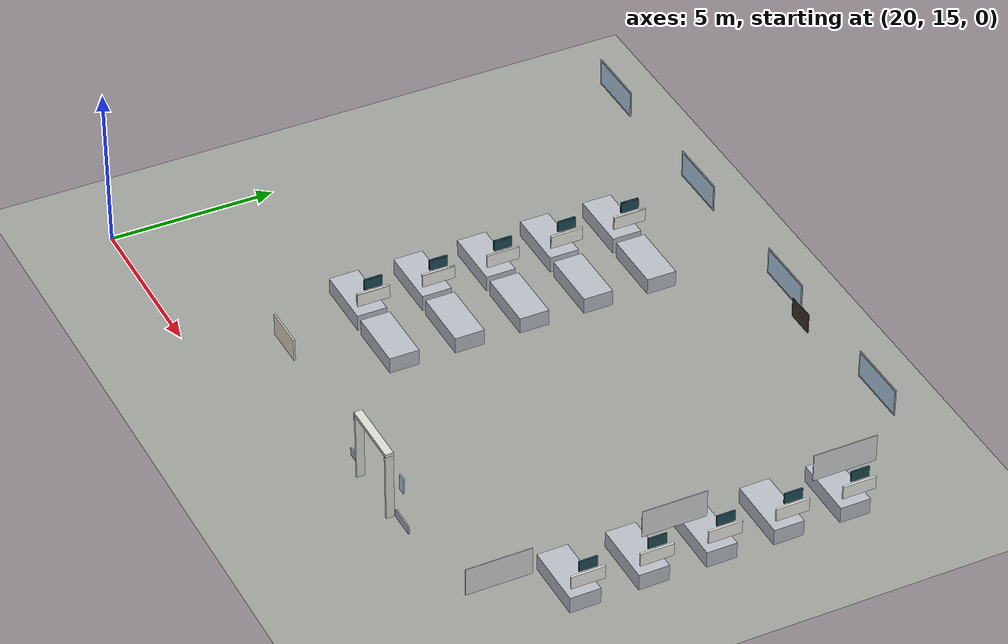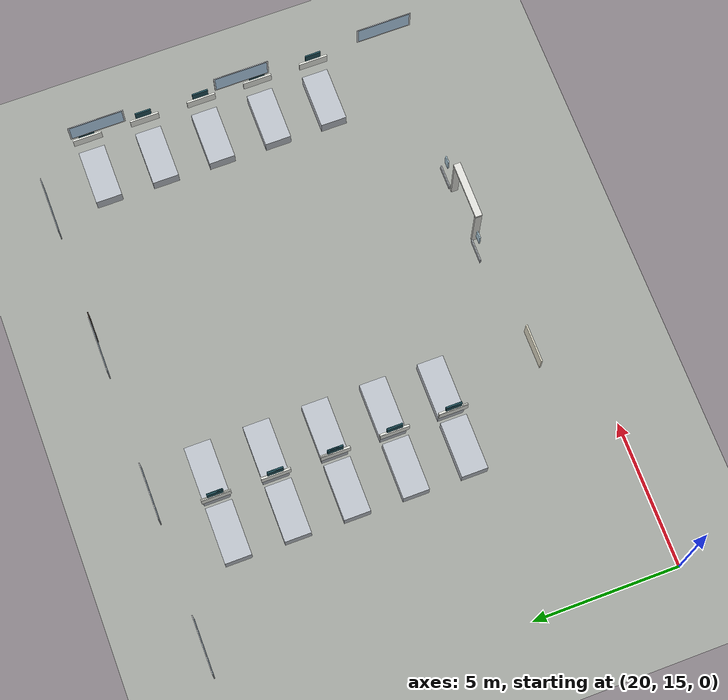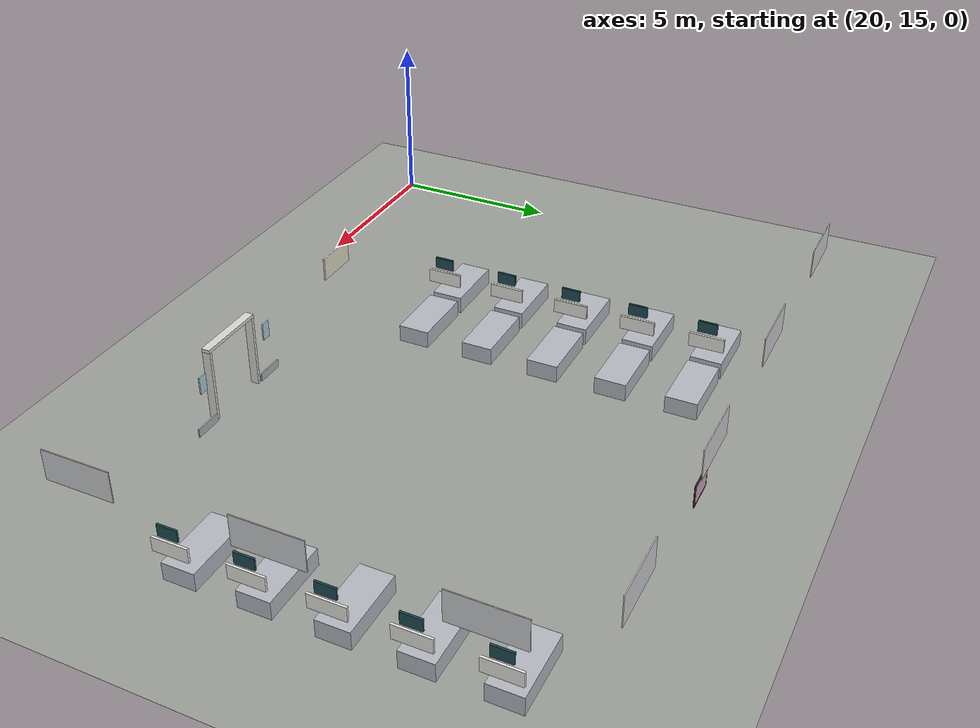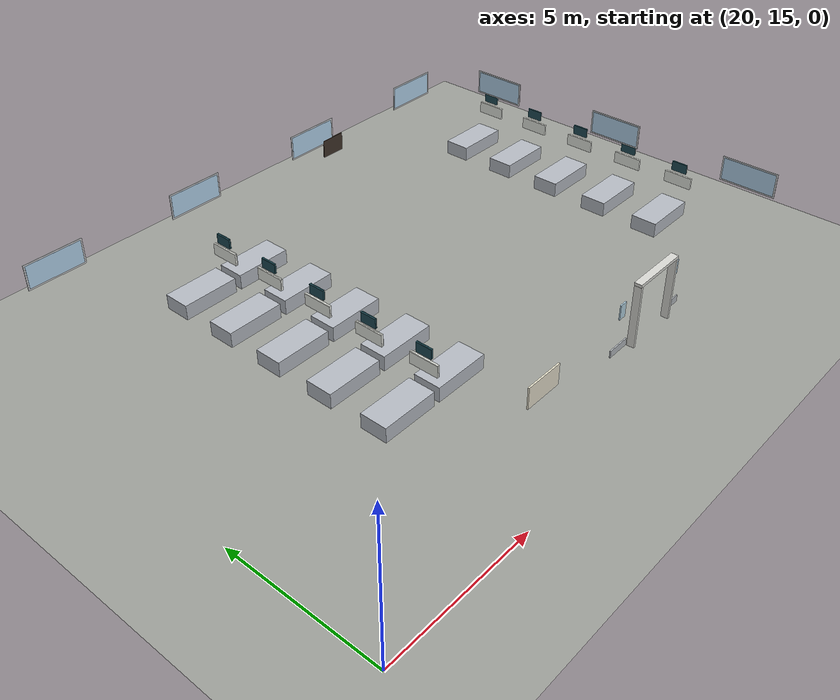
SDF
<sdf version="1.9">
 <world name="hospital">
  <model name="ground_plane">
   <static>true</static>
   <link name="link">
    <collision name="collision">
     <geometry><plane><normal>0 0 1</normal><size>200 200</size></plane></geometry>
    </collision>
    <visual name="visual">
     <pose>0 0 -0.03 0 0 0</pose>
     <cast_shadows>false</cast_shadows>
     <geometry><plane><normal>0 0 1</normal><size>200 200</size></plane></geometry>
     <material>
      <ambient>0.310 0.315 0.305 1.0</ambient>
      <diffuse>0.620 0.630 0.610 1.0</diffuse>
      <specular>0.14 0.14 0.14 1</specular>
      <emissive>0.000 0.000 0.000 1</emissive>
     </material>
    </visual>
   </link>
  </model>
  <model name="bed_7">
   <static>true</static>
   <pose>25.95 20.0 0.25 0 0 0</pose>
   <link name="link">
    <collision name="c">
     <geometry><box><size>1.8999999999999986 0.8999999999999986 0.5</size></box></geometry>
    </collision>
    <visual name="v">
     <visibility_flags>2</visibility_flags>
     <geometry><box><size>1.8999999999999986 0.8999999999999986 0.5</size></box></geometry>
     <material>
      <ambient>0.360 0.370 0.385 1.0</ambient>
      <diffuse>0.720 0.740 0.770 1.0</diffuse>
      <specular>0.14 0.14 0.14 1</specular>
      <emissive>0.000 0.000 0.000 1</emissive>
     </material>
    </visual>
   </link>
  </model>
  <model name="bed_9">
   <static>true</static>
   <pose>25.95 24.0 0.25 0 0 0</pose>
   <link name="link">
    <collision name="c">
     <geometry><box><size>1.8999999999999986 0.8999999999999986 0.5</size></box></geometry>
    </collision>
    <visual name="v">
     <visibility_flags>2</visibility_flags>
     <geometry><box><size>1.8999999999999986 0.8999999999999986 0.5</size></box></geometry>
     <material>
      <ambient>0.360 0.370 0.385 1.0</ambient>
      <diffuse>0.720 0.740 0.770 1.0</diffuse>
      <specular>0.14 0.14 0.14 1</specular>
      <emissive>0.000 0.000 0.000 1</emissive>
     </material>
    </visual>
   </link>
  </model>
  <model name="bed_11">
   <static>true</static>
   <pose>25.95 28.0 0.25 0 0 0</pose>
   <link name="link">
    <collision name="c">
     <geometry><box><size>1.8999999999999986 0.8999999999999986 0.5</size></box></geometry>
    </collision>
    <visual name="v">
     <visibility_flags>2</visibility_flags>
     <geometry><box><size>1.8999999999999986 0.8999999999999986 0.5</size></box></geometry>
     <material>
      <ambient>0.360 0.370 0.385 1.0</ambient>
      <diffuse>0.720 0.740 0.770 1.0</diffuse>
      <specular>0.14 0.14 0.14 1</specular>
      <emissive>0.000 0.000 0.000 1</emissive>
     </material>
    </visual>
   </link>
  </model>
  <model name="bed_12">
   <static>true</static>
   <pose>28.05 20.0 0.25 0 0 0</pose>
   <link name="link">
    <collision name="c">
     <geometry><box><size>1.8999999999999986 0.8999999999999986 0.5</size></box></geometry>
    </collision>
    <visual name="v">
     <visibility_flags>2</visibility_flags>
     <geometry><box><size>1.8999999999999986 0.8999999999999986 0.5</size></box></geometry>
     <material>
      <ambient>0.360 0.370 0.385 1.0</ambient>
      <diffuse>0.720 0.740 0.770 1.0</diffuse>
      <specular>0.14 0.14 0.14 1</specular>
      <emissive>0.000 0.000 0.000 1</emissive>
     </material>
    </visual>
   </link>
  </model>
  <model name="bed_13">
   <static>true</static>
   <pose>38.95 20.0 0.25 0 0 0</pose>
   <link name="link">
    <collision name="c">
     <geometry><box><size>1.8999999999999986 0.8999999999999986 0.5</size></box></geometry>
    </collision>
    <visual name="v">
     <visibility_flags>2</visibility_flags>
     <geometry><box><size>1.8999999999999986 0.8999999999999986 0.5</size></box></geometry>
     <material>
      <ambient>0.360 0.370 0.385 1.0</ambient>
      <diffuse>0.720 0.740 0.770 1.0</diffuse>
      <specular>0.14 0.14 0.14 1</specular>
      <emissive>0.000 0.000 0.000 1</emissive>
     </material>
    </visual>
   </link>
  </model>
  <model name="bed_14">
   <static>true</static>
   <pose>28.05 24.0 0.25 0 0 0</pose>
   <link name="link">
    <collision name="c">
     <geometry><box><size>1.8999999999999986 0.8999999999999986 0.5</size></box></geometry>
    </collision>
    <visual name="v">
     <visibility_flags>2</visibility_flags>
     <geometry><box><size>1.8999999999999986 0.8999999999999986 0.5</size></box></geometry>
     <material>
      <ambient>0.360 0.370 0.385 1.0</ambient>
      <diffuse>0.720 0.740 0.770 1.0</diffuse>
      <specular>0.14 0.14 0.14 1</specular>
      <emissive>0.000 0.000 0.000 1</emissive>
     </material>
    </visual>
   </link>
  </model>
  <model name="bed_15">
   <static>true</static>
   <pose>38.95 24.0 0.25 0 0 0</pose>
   <link name="link">
    <collision name="c">
     <geometry><box><size>1.8999999999999986 0.8999999999999986 0.5</size></box></geometry>
    </collision>
    <visual name="v">
     <visibility_flags>2</visibility_flags>
     <geometry><box><size>1.8999999999999986 0.8999999999999986 0.5</size></box></geometry>
     <material>
      <ambient>0.360 0.370 0.385 1.0</ambient>
      <diffuse>0.720 0.740 0.770 1.0</diffuse>
      <specular>0.14 0.14 0.14 1</specular>
      <emissive>0.000 0.000 0.000 1</emissive>
     </material>
    </visual>
   </link>
  </model>
  <model name="bed_16">
   <static>true</static>
   <pose>28.05 28.0 0.25 0 0 0</pose>
   <link name="link">
    <collision name="c">
     <geometry><box><size>1.8999999999999986 0.8999999999999986 0.5</size></box></geometry>
    </collision>
    <visual name="v">
     <visibility_flags>2</visibility_flags>
     <geometry><box><size>1.8999999999999986 0.8999999999999986 0.5</size></box></geometry>
     <material>
      <ambient>0.360 0.370 0.385 1.0</ambient>
      <diffuse>0.720 0.740 0.770 1.0</diffuse>
      <specular>0.14 0.14 0.14 1</specular>
      <emissive>0.000 0.000 0.000 1</emissive>
     </material>
    </visual>
   </link>
  </model>
  <model name="bed_17">
   <static>true</static>
   <pose>38.95 28.0 0.25 0 0 0</pose>
   <link name="link">
    <collision name="c">
     <geometry><box><size>1.8999999999999986 0.8999999999999986 0.5</size></box></geometry>
    </collision>
    <visual name="v">
     <visibility_flags>2</visibility_flags>
     <geometry><box><size>1.8999999999999986 0.8999999999999986 0.5</size></box></geometry>
     <material>
      <ambient>0.360 0.370 0.385 1.0</ambient>
      <diffuse>0.720 0.740 0.770 1.0</diffuse>
      <specular>0.14 0.14 0.14 1</specular>
      <emissive>0.000 0.000 0.000 1</emissive>
     </material>
    </visual>
   </link>
  </model>
  <model name="bed_37">
   <static>true</static>
   <pose>25.95 22.0 0.25 0 0 0</pose>
   <link name="link">
    <collision name="c">
     <geometry><box><size>1.8999999999999986 0.8999999999999986 0.5</size></box></geometry>
    </collision>
    <visual name="v">
     <visibility_flags>2</visibility_flags>
     <geometry><box><size>1.8999999999999986 0.8999999999999986 0.5</size></box></geometry>
     <material>
      <ambient>0.360 0.370 0.385 1.0</ambient>
      <diffuse>0.720 0.740 0.770 1.0</diffuse>
      <specular>0.14 0.14 0.14 1</specular>
      <emissive>0.000 0.000 0.000 1</emissive>
     </material>
    </visual>
   </link>
  </model>
  <model name="bed_39">
   <static>true</static>
   <pose>25.95 26.0 0.25 0 0 0</pose>
   <link name="link">
    <collision name="c">
     <geometry><box><size>1.8999999999999986 0.8999999999999986 0.5</size></box></geometry>
    </collision>
    <visual name="v">
     <visibility_flags>2</visibility_flags>
     <geometry><box><size>1.8999999999999986 0.8999999999999986 0.5</size></box></geometry>
     <material>
      <ambient>0.360 0.370 0.385 1.0</ambient>
      <diffuse>0.720 0.740 0.770 1.0</diffuse>
      <specular>0.14 0.14 0.14 1</specular>
      <emissive>0.000 0.000 0.000 1</emissive>
     </material>
    </visual>
   </link>
  </model>
  <model name="bed_40">
   <static>true</static>
   <pose>28.05 22.0 0.25 0 0 0</pose>
   <link name="link">
    <collision name="c">
     <geometry><box><size>1.8999999999999986 0.8999999999999986 0.5</size></box></geometry>
    </collision>
    <visual name="v">
     <visibility_flags>2</visibility_flags>
     <geometry><box><size>1.8999999999999986 0.8999999999999986 0.5</size></box></geometry>
     <material>
      <ambient>0.360 0.370 0.385 1.0</ambient>
      <diffuse>0.720 0.740 0.770 1.0</diffuse>
      <specular>0.14 0.14 0.14 1</specular>
      <emissive>0.000 0.000 0.000 1</emissive>
     </material>
    </visual>
   </link>
  </model>
  <model name="bed_41">
   <static>true</static>
   <pose>38.95 22.0 0.25 0 0 0</pose>
   <link name="link">
    <collision name="c">
     <geometry><box><size>1.8999999999999986 0.8999999999999986 0.5</size></box></geometry>
    </collision>
    <visual name="v">
     <visibility_flags>2</visibility_flags>
     <geometry><box><size>1.8999999999999986 0.8999999999999986 0.5</size></box></geometry>
     <material>
      <ambient>0.360 0.370 0.385 1.0</ambient>
      <diffuse>0.720 0.740 0.770 1.0</diffuse>
      <specular>0.14 0.14 0.14 1</specular>
      <emissive>0.000 0.000 0.000 1</emissive>
     </material>
    </visual>
   </link>
  </model>
  <model name="bed_42">
   <static>true</static>
   <pose>28.05 26.0 0.25 0 0 0</pose>
   <link name="link">
    <collision name="c">
     <geometry><box><size>1.8999999999999986 0.8999999999999986 0.5</size></box></geometry>
    </collision>
    <visual name="v">
     <visibility_flags>2</visibility_flags>
     <geometry><box><size>1.8999999999999986 0.8999999999999986 0.5</size></box></geometry>
     <material>
      <ambient>0.360 0.370 0.385 1.0</ambient>
      <diffuse>0.720 0.740 0.770 1.0</diffuse>
      <specular>0.14 0.14 0.14 1</specular>
      <emissive>0.000 0.000 0.000 1</emissive>
     </material>
    </visual>
   </link>
  </model>
  <model name="bed_43">
   <static>true</static>
   <pose>38.95 26.0 0.25 0 0 0</pose>
   <link name="link">
    <collision name="c">
     <geometry><box><size>1.8999999999999986 0.8999999999999986 0.5</size></box></geometry>
    </collision>
    <visual name="v">
     <visibility_flags>2</visibility_flags>
     <geometry><box><size>1.8999999999999986 0.8999999999999986 0.5</size></box></geometry>
     <material>
      <ambient>0.360 0.370 0.385 1.0</ambient>
      <diffuse>0.720 0.740 0.770 1.0</diffuse>
      <specular>0.14 0.14 0.14 1</specular>
      <emissive>0.000 0.000 0.000 1</emissive>
     </material>
    </visual>
   </link>
  </model>
  <model name="bed_7_panel">
   <static>true</static>
   <pose>27.009999999999998 20.0 1.15 0 0 0</pose>
   <link name="link">
    <visual name="v">
     <cast_shadows>false</cast_shadows>
     <geometry><box><size>0.06 0.9899999999999985 0.4</size></box></geometry>
     <material>
      <ambient>0.460 0.465 0.450 1.0</ambient>
      <diffuse>0.920 0.930 0.900 1.0</diffuse>
      <specular>0.14 0.14 0.14 1</specular>
      <emissive>0.000 0.000 0.000 1</emissive>
     </material>
    </visual>
   </link>
  </model>
  <model name="bed_7_monitor">
   <static>true</static>
   <pose>27.009999999999998 20.0 1.615 0 0 0</pose>
   <link name="link">
    <visual name="v">
     <cast_shadows>false</cast_shadows>
     <geometry><box><size>0.05 0.5444999999999992 0.33</size></box></geometry>
     <material>
      <ambient>0.060 0.150 0.170 1.0</ambient>
      <diffuse>0.120 0.300 0.340 1.0</diffuse>
      <specular>0.14 0.14 0.14 1</specular>
      <emissive>0.042 0.105 0.119 1</emissive>
     </material>
    </visual>
   </link>
  </model>
  <model name="bed_9_panel">
   <static>true</static>
   <pose>27.009999999999998 24.0 1.15 0 0 0</pose>
   <link name="link">
    <visual name="v">
     <cast_shadows>false</cast_shadows>
     <geometry><box><size>0.06 0.9899999999999985 0.4</size></box></geometry>
     <material>
      <ambient>0.460 0.465 0.450 1.0</ambient>
      <diffuse>0.920 0.930 0.900 1.0</diffuse>
      <specular>0.14 0.14 0.14 1</specular>
      <emissive>0.000 0.000 0.000 1</emissive>
     </material>
    </visual>
   </link>
  </model>
  <model name="bed_9_monitor">
   <static>true</static>
   <pose>27.009999999999998 24.0 1.615 0 0 0</pose>
   <link name="link">
    <visual name="v">
     <cast_shadows>false</cast_shadows>
     <geometry><box><size>0.05 0.5444999999999992 0.33</size></box></geometry>
     <material>
      <ambient>0.060 0.150 0.170 1.0</ambient>
      <diffuse>0.120 0.300 0.340 1.0</diffuse>
      <specular>0.14 0.14 0.14 1</specular>
      <emissive>0.042 0.105 0.119 1</emissive>
     </material>
    </visual>
   </link>
  </model>
  <model name="bed_11_panel">
   <static>true</static>
   <pose>27.009999999999998 28.0 1.15 0 0 0</pose>
   <link name="link">
    <visual name="v">
     <cast_shadows>false</cast_shadows>
     <geometry><box><size>0.06 0.9899999999999985 0.4</size></box></geometry>
     <material>
      <ambient>0.460 0.465 0.450 1.0</ambient>
      <diffuse>0.920 0.930 0.900 1.0</diffuse>
      <specular>0.14 0.14 0.14 1</specular>
      <emissive>0.000 0.000 0.000 1</emissive>
     </material>
    </visual>
   </link>
  </model>
  <model name="bed_11_monitor">
   <static>true</static>
   <pose>27.009999999999998 28.0 1.615 0 0 0</pose>
   <link name="link">
    <visual name="v">
     <cast_shadows>false</cast_shadows>
     <geometry><box><size>0.05 0.5444999999999992 0.33</size></box></geometry>
     <material>
      <ambient>0.060 0.150 0.170 1.0</ambient>
      <diffuse>0.120 0.300 0.340 1.0</diffuse>
      <specular>0.14 0.14 0.14 1</specular>
      <emissive>0.042 0.105 0.119 1</emissive>
     </material>
    </visual>
   </link>
  </model>
  <model name="bed_12_panel">
   <static>true</static>
   <pose>26.990000000000002 20.0 1.15 0 0 0</pose>
   <link name="link">
    <visual name="v">
     <cast_shadows>false</cast_shadows>
     <geometry><box><size>0.06 0.9899999999999985 0.4</size></box></geometry>
     <material>
      <ambient>0.460 0.465 0.450 1.0</ambient>
      <diffuse>0.920 0.930 0.900 1.0</diffuse>
      <specular>0.14 0.14 0.14 1</specular>
      <emissive>0.000 0.000 0.000 1</emissive>
     </material>
    </visual>
   </link>
  </model>
  <model name="bed_12_monitor">
   <static>true</static>
   <pose>26.990000000000002 20.0 1.615 0 0 0</pose>
   <link name="link">
    <visual name="v">
     <cast_shadows>false</cast_shadows>
     <geometry><box><size>0.05 0.5444999999999992 0.33</size></box></geometry>
     <material>
      <ambient>0.060 0.150 0.170 1.0</ambient>
      <diffuse>0.120 0.300 0.340 1.0</diffuse>
      <specular>0.14 0.14 0.14 1</specular>
      <emissive>0.042 0.105 0.119 1</emissive>
     </material>
    </visual>
   </link>
  </model>
  <model name="bed_13_panel">
   <static>true</static>
   <pose>40.010000000000005 20.0 1.15 0 0 0</pose>
   <link name="link">
    <visual name="v">
     <cast_shadows>false</cast_shadows>
     <geometry><box><size>0.06 0.9899999999999985 0.4</size></box></geometry>
     <material>
      <ambient>0.460 0.465 0.450 1.0</ambient>
      <diffuse>0.920 0.930 0.900 1.0</diffuse>
      <specular>0.14 0.14 0.14 1</specular>
      <emissive>0.000 0.000 0.000 1</emissive>
     </material>
    </visual>
   </link>
  </model>
  <model name="bed_13_monitor">
   <static>true</static>
   <pose>40.010000000000005 20.0 1.615 0 0 0</pose>
   <link name="link">
    <visual name="v">
     <cast_shadows>false</cast_shadows>
     <geometry><box><size>0.05 0.5444999999999992 0.33</size></box></geometry>
     <material>
      <ambient>0.060 0.150 0.170 1.0</ambient>
      <diffuse>0.120 0.300 0.340 1.0</diffuse>
      <specular>0.14 0.14 0.14 1</specular>
      <emissive>0.042 0.105 0.119 1</emissive>
     </material>
    </visual>
   </link>
  </model>
  <model name="bed_14_panel">
   <static>true</static>
   <pose>26.990000000000002 24.0 1.15 0 0 0</pose>
   <link name="link">
    <visual name="v">
     <cast_shadows>false</cast_shadows>
     <geometry><box><size>0.06 0.9899999999999985 0.4</size></box></geometry>
     <material>
      <ambient>0.460 0.465 0.450 1.0</ambient>
      <diffuse>0.920 0.930 0.900 1.0</diffuse>
      <specular>0.14 0.14 0.14 1</specular>
      <emissive>0.000 0.000 0.000 1</emissive>
     </material>
    </visual>
   </link>
  </model>
  <model name="bed_14_monitor">
   <static>true</static>
   <pose>26.990000000000002 24.0 1.615 0 0 0</pose>
   <link name="link">
    <visual name="v">
     <cast_shadows>false</cast_shadows>
     <geometry><box><size>0.05 0.5444999999999992 0.33</size></box></geometry>
     <material>
      <ambient>0.060 0.150 0.170 1.0</ambient>
      <diffuse>0.120 0.300 0.340 1.0</diffuse>
      <specular>0.14 0.14 0.14 1</specular>
      <emissive>0.042 0.105 0.119 1</emissive>
     </material>
    </visual>
   </link>
  </model>
  <model name="bed_15_panel">
   <static>true</static>
   <pose>40.010000000000005 24.0 1.15 0 0 0</pose>
   <link name="link">
    <visual name="v">
     <cast_shadows>false</cast_shadows>
     <geometry><box><size>0.06 0.9899999999999985 0.4</size></box></geometry>
     <material>
      <ambient>0.460 0.465 0.450 1.0</ambient>
      <diffuse>0.920 0.930 0.900 1.0</diffuse>
      <specular>0.14 0.14 0.14 1</specular>
      <emissive>0.000 0.000 0.000 1</emissive>
     </material>
    </visual>
   </link>
  </model>
  <model name="bed_15_monitor">
   <static>true</static>
   <pose>40.010000000000005 24.0 1.615 0 0 0</pose>
   <link name="link">
    <visual name="v">
     <cast_shadows>false</cast_shadows>
     <geometry><box><size>0.05 0.5444999999999992 0.33</size></box></geometry>
     <material>
      <ambient>0.060 0.150 0.170 1.0</ambient>
      <diffuse>0.120 0.300 0.340 1.0</diffuse>
      <specular>0.14 0.14 0.14 1</specular>
      <emissive>0.042 0.105 0.119 1</emissive>
     </material>
    </visual>
   </link>
  </model>
  <model name="bed_16_panel">
   <static>true</static>
   <pose>26.990000000000002 28.0 1.15 0 0 0</pose>
   <link name="link">
    <visual name="v">
     <cast_shadows>false</cast_shadows>
     <geometry><box><size>0.06 0.9899999999999985 0.4</size></box></geometry>
     <material>
      <ambient>0.460 0.465 0.450 1.0</ambient>
      <diffuse>0.920 0.930 0.900 1.0</diffuse>
      <specular>0.14 0.14 0.14 1</specular>
      <emissive>0.000 0.000 0.000 1</emissive>
     </material>
    </visual>
   </link>
  </model>
  <model name="bed_16_monitor">
   <static>true</static>
   <pose>26.990000000000002 28.0 1.615 0 0 0</pose>
   <link name="link">
    <visual name="v">
     <cast_shadows>false</cast_shadows>
     <geometry><box><size>0.05 0.5444999999999992 0.33</size></box></geometry>
     <material>
      <ambient>0.060 0.150 0.170 1.0</ambient>
      <diffuse>0.120 0.300 0.340 1.0</diffuse>
      <specular>0.14 0.14 0.14 1</specular>
      <emissive>0.042 0.105 0.119 1</emissive>
     </material>
    </visual>
   </link>
  </model>
  <model name="bed_17_panel">
   <static>true</static>
   <pose>40.010000000000005 28.0 1.15 0 0 0</pose>
   <link name="link">
    <visual name="v">
     <cast_shadows>false</cast_shadows>
     <geometry><box><size>0.06 0.9899999999999985 0.4</size></box></geometry>
     <material>
      <ambient>0.460 0.465 0.450 1.0</ambient>
      <diffuse>0.920 0.930 0.900 1.0</diffuse>
      <specular>0.14 0.14 0.14 1</specular>
      <emissive>0.000 0.000 0.000 1</emissive>
     </material>
    </visual>
   </link>
  </model>
  <model name="bed_17_monitor">
   <static>true</static>
   <pose>40.010000000000005 28.0 1.615 0 0 0</pose>
   <link name="link">
    <visual name="v">
     <cast_shadows>false</cast_shadows>
     <geometry><box><size>0.05 0.5444999999999992 0.33</size></box></geometry>
     <material>
      <ambient>0.060 0.150 0.170 1.0</ambient>
      <diffuse>0.120 0.300 0.340 1.0</diffuse>
      <specular>0.14 0.14 0.14 1</specular>
      <emissive>0.042 0.105 0.119 1</emissive>
     </material>
    </visual>
   </link>
  </model>
  <model name="bed_37_panel">
   <static>true</static>
   <pose>27.009999999999998 22.0 1.15 0 0 0</pose>
   <link name="link">
    <visual name="v">
     <cast_shadows>false</cast_shadows>
     <geometry><box><size>0.06 0.9899999999999985 0.4</size></box></geometry>
     <material>
      <ambient>0.460 0.465 0.450 1.0</ambient>
      <diffuse>0.920 0.930 0.900 1.0</diffuse>
      <specular>0.14 0.14 0.14 1</specular>
      <emissive>0.000 0.000 0.000 1</emissive>
     </material>
    </visual>
   </link>
  </model>
  <model name="bed_37_monitor">
   <static>true</static>
   <pose>27.009999999999998 22.0 1.615 0 0 0</pose>
   <link name="link">
    <visual name="v">
     <cast_shadows>false</cast_shadows>
     <geometry><box><size>0.05 0.5444999999999992 0.33</size></box></geometry>
     <material>
      <ambient>0.060 0.150 0.170 1.0</ambient>
      <diffuse>0.120 0.300 0.340 1.0</diffuse>
      <specular>0.14 0.14 0.14 1</specular>
      <emissive>0.042 0.105 0.119 1</emissive>
     </material>
    </visual>
   </link>
  </model>
  <model name="bed_39_panel">
   <static>true</static>
   <pose>27.009999999999998 26.0 1.15 0 0 0</pose>
   <link name="link">
    <visual name="v">
     <cast_shadows>false</cast_shadows>
     <geometry><box><size>0.06 0.9899999999999985 0.4</size></box></geometry>
     <material>
      <ambient>0.460 0.465 0.450 1.0</ambient>
      <diffuse>0.920 0.930 0.900 1.0</diffuse>
      <specular>0.14 0.14 0.14 1</specular>
      <emissive>0.000 0.000 0.000 1</emissive>
     </material>
    </visual>
   </link>
  </model>
  <model name="bed_39_monitor">
   <static>true</static>
   <pose>27.009999999999998 26.0 1.615 0 0 0</pose>
   <link name="link">
    <visual name="v">
     <cast_shadows>false</cast_shadows>
     <geometry><box><size>0.05 0.5444999999999992 0.33</size></box></geometry>
     <material>
      <ambient>0.060 0.150 0.170 1.0</ambient>
      <diffuse>0.120 0.300 0.340 1.0</diffuse>
      <specular>0.14 0.14 0.14 1</specular>
      <emissive>0.042 0.105 0.119 1</emissive>
     </material>
    </visual>
   </link>
  </model>
  <model name="bed_40_panel">
   <static>true</static>
   <pose>26.990000000000002 22.0 1.15 0 0 0</pose>
   <link name="link">
    <visual name="v">
     <cast_shadows>false</cast_shadows>
     <geometry><box><size>0.06 0.9899999999999985 0.4</size></box></geometry>
     <material>
      <ambient>0.460 0.465 0.450 1.0</ambient>
      <diffuse>0.920 0.930 0.900 1.0</diffuse>
      <specular>0.14 0.14 0.14 1</specular>
      <emissive>0.000 0.000 0.000 1</emissive>
     </material>
    </visual>
   </link>
  </model>
  <model name="bed_40_monitor">
   <static>true</static>
   <pose>26.990000000000002 22.0 1.615 0 0 0</pose>
   <link name="link">
    <visual name="v">
     <cast_shadows>false</cast_shadows>
     <geometry><box><size>0.05 0.5444999999999992 0.33</size></box></geometry>
     <material>
      <ambient>0.060 0.150 0.170 1.0</ambient>
      <diffuse>0.120 0.300 0.340 1.0</diffuse>
      <specular>0.14 0.14 0.14 1</specular>
      <emissive>0.042 0.105 0.119 1</emissive>
     </material>
    </visual>
   </link>
  </model>
  <model name="bed_41_panel">
   <static>true</static>
   <pose>40.010000000000005 22.0 1.15 0 0 0</pose>
   <link name="link">
    <visual name="v">
     <cast_shadows>false</cast_shadows>
     <geometry><box><size>0.06 0.9899999999999985 0.4</size></box></geometry>
     <material>
      <ambient>0.460 0.465 0.450 1.0</ambient>
      <diffuse>0.920 0.930 0.900 1.0</diffuse>
      <specular>0.14 0.14 0.14 1</specular>
      <emissive>0.000 0.000 0.000 1</emissive>
     </material>
    </visual>
   </link>
  </model>
  <model name="bed_41_monitor">
   <static>true</static>
   <pose>40.010000000000005 22.0 1.615 0 0 0</pose>
   <link name="link">
    <visual name="v">
     <cast_shadows>false</cast_shadows>
     <geometry><box><size>0.05 0.5444999999999992 0.33</size></box></geometry>
     <material>
      <ambient>0.060 0.150 0.170 1.0</ambient>
      <diffuse>0.120 0.300 0.340 1.0</diffuse>
      <specular>0.14 0.14 0.14 1</specular>
      <emissive>0.042 0.105 0.119 1</emissive>
     </material>
    </visual>
   </link>
  </model>
  <model name="bed_42_panel">
   <static>true</static>
   <pose>26.990000000000002 26.0 1.15 0 0 0</pose>
   <link name="link">
    <visual name="v">
     <cast_shadows>false</cast_shadows>
     <geometry><box><size>0.06 0.9899999999999985 0.4</size></box></geometry>
     <material>
      <ambient>0.460 0.465 0.450 1.0</ambient>
      <diffuse>0.920 0.930 0.900 1.0</diffuse>
      <specular>0.14 0.14 0.14 1</specular>
      <emissive>0.000 0.000 0.000 1</emissive>
     </material>
    </visual>
   </link>
  </model>
  <model name="bed_42_monitor">
   <static>true</static>
   <pose>26.990000000000002 26.0 1.615 0 0 0</pose>
   <link name="link">
    <visual name="v">
     <cast_shadows>false</cast_shadows>
     <geometry><box><size>0.05 0.5444999999999992 0.33</size></box></geometry>
     <material>
      <ambient>0.060 0.150 0.170 1.0</ambient>
      <diffuse>0.120 0.300 0.340 1.0</diffuse>
      <specular>0.14 0.14 0.14 1</specular>
      <emissive>0.042 0.105 0.119 1</emissive>
     </material>
    </visual>
   </link>
  </model>
  <model name="bed_43_panel">
   <static>true</static>
   <pose>40.010000000000005 26.0 1.15 0 0 0</pose>
   <link name="link">
    <visual name="v">
     <cast_shadows>false</cast_shadows>
     <geometry><box><size>0.06 0.9899999999999985 0.4</size></box></geometry>
     <material>
      <ambient>0.460 0.465 0.450 1.0</ambient>
      <diffuse>0.920 0.930 0.900 1.0</diffuse>
      <specular>0.14 0.14 0.14 1</specular>
      <emissive>0.000 0.000 0.000 1</emissive>
     </material>
    </visual>
   </link>
  </model>
  <model name="bed_43_monitor">
   <static>true</static>
   <pose>40.010000000000005 26.0 1.615 0 0 0</pose>
   <link name="link">
    <visual name="v">
     <cast_shadows>false</cast_shadows>
     <geometry><box><size>0.05 0.5444999999999992 0.33</size></box></geometry>
     <material>
      <ambient>0.060 0.150 0.170 1.0</ambient>
      <diffuse>0.120 0.300 0.340 1.0</diffuse>
      <specular>0.14 0.14 0.14 1</specular>
      <emissive>0.042 0.105 0.119 1</emissive>
     </material>
    </visual>
   </link>
  </model>
  <model name="door_2_jamb0">
   <static>true</static>
   <pose>32.57 17.0 1.05 0 0 0</pose>
   <link name="link">
    <visual name="v">
     <visibility_flags>4</visibility_flags>
     <geometry><box><size>0.08 0.24000000000000002 2.1</size></box></geometry>
     <material>
      <ambient>0.430 0.430 0.420 1.0</ambient>
      <diffuse>0.860 0.860 0.840 1.0</diffuse>
      <specular>0.14 0.14 0.14 1</specular>
      <emissive>0.000 0.000 0.000 1</emissive>
     </material>
    </visual>
   </link>
  </model>
  <model name="door_2_jamb1">
   <static>true</static>
   <pose>34.43000000000001 17.0 1.05 0 0 0</pose>
   <link name="link">
    <visual name="v">
     <visibility_flags>4</visibility_flags>
     <geometry><box><size>0.08 0.24000000000000002 2.1</size></box></geometry>
     <material>
      <ambient>0.430 0.430 0.420 1.0</ambient>
      <diffuse>0.860 0.860 0.840 1.0</diffuse>
      <specular>0.14 0.14 0.14 1</specular>
      <emissive>0.000 0.000 0.000 1</emissive>
     </material>
    </visual>
   </link>
  </model>
  <model name="door_2_head">
   <static>true</static>
   <pose>33.5 17.0 2.15 0 0 0</pose>
   <link name="link">
    <visual name="v">
     <visibility_flags>4</visibility_flags>
     <geometry><box><size>1.9600000000000042 0.24000000000000002 0.1</size></box></geometry>
     <material>
      <ambient>0.430 0.430 0.420 1.0</ambient>
      <diffuse>0.860 0.860 0.840 1.0</diffuse>
      <specular>0.14 0.14 0.14 1</specular>
      <emissive>0.000 0.000 0.000 1</emissive>
     </material>
    </visual>
   </link>
  </model>
  <model name="door_2_glass0">
   <static>true</static>
   <pose>32.09 17.141 1.45 0 0 0</pose>
   <link name="link">
    <visual name="v">
     <visibility_flags>4</visibility_flags>
     <geometry><box><size>0.26 0.04 0.5</size></box></geometry>
     <material>
      <ambient>0.350 0.410 0.440 1.0</ambient>
      <diffuse>0.700 0.820 0.880 1.0</diffuse>
      <specular>0.14 0.14 0.14 1</specular>
      <emissive>0.140 0.164 0.176 1</emissive>
     </material>
    </visual>
   </link>
  </model>
  <model name="door_2_kick0">
   <static>true</static>
   <pose>32.09 17.141 0.14 0 0 0</pose>
   <link name="link">
    <visual name="v">
     <visibility_flags>4</visibility_flags>
     <geometry><box><size>0.8 0.04 0.24</size></box></geometry>
     <material>
      <ambient>0.350 0.360 0.370 1.0</ambient>
      <diffuse>0.700 0.720 0.740 1.0</diffuse>
      <specular>0.14 0.14 0.14 1</specular>
      <emissive>0.000 0.000 0.000 1</emissive>
     </material>
    </visual>
   </link>
  </model>
  <model name="door_2_glass1">
   <static>true</static>
   <pose>34.910000000000004 17.141 1.45 0 0 0</pose>
   <link name="link">
    <visual name="v">
     <visibility_flags>4</visibility_flags>
     <geometry><box><size>0.26 0.04 0.5</size></box></geometry>
     <material>
      <ambient>0.350 0.410 0.440 1.0</ambient>
      <diffuse>0.700 0.820 0.880 1.0</diffuse>
      <specular>0.14 0.14 0.14 1</specular>
      <emissive>0.140 0.164 0.176 1</emissive>
     </material>
    </visual>
   </link>
  </model>
  <model name="door_2_kick1">
   <static>true</static>
   <pose>34.910000000000004 17.141 0.14 0 0 0</pose>
   <link name="link">
    <visual name="v">
     <visibility_flags>4</visibility_flags>
     <geometry><box><size>0.8 0.04 0.24</size></box></geometry>
     <material>
      <ambient>0.350 0.360 0.370 1.0</ambient>
      <diffuse>0.700 0.720 0.740 1.0</diffuse>
      <specular>0.14 0.14 0.14 1</specular>
      <emissive>0.000 0.000 0.000 1</emissive>
     </material>
    </visual>
   </link>
  </model>
  <model name="wall_1_winf4">
   <static>true</static>
   <pose>22.5125 29.888 2.225 0 0 0</pose>
   <link name="link">
    <visual name="v">
     <cast_shadows>false</cast_shadows>
     <geometry><box><size>1.9000000000000001 0.024 0.85</size></box></geometry>
     <material>
      <ambient>0.410 0.415 0.420 1.0</ambient>
      <diffuse>0.820 0.830 0.840 1.0</diffuse>
      <specular>0.14 0.14 0.14 1</specular>
      <emissive>0.000 0.000 0.000 1</emissive>
     </material>
    </visual>
   </link>
  </model>
  <model name="wall_1_win4">
   <static>true</static>
   <pose>22.5125 29.880000000000003 2.225 0 0 0</pose>
   <link name="link">
    <visual name="v">
     <cast_shadows>false</cast_shadows>
     <geometry><box><size>1.8 0.012 0.75</size></box></geometry>
     <material>
      <ambient>0.360 0.425 0.475 1.0</ambient>
      <diffuse>0.720 0.850 0.950 1.0</diffuse>
      <specular>0.14 0.14 0.14 1</specular>
      <emissive>0.468 0.552 0.617 1</emissive>
     </material>
    </visual>
   </link>
  </model>
  <model name="wall_1_winf5">
   <static>true</static>
   <pose>27.5375 29.888 2.225 0 0 0</pose>
   <link name="link">
    <visual name="v">
     <cast_shadows>false</cast_shadows>
     <geometry><box><size>1.9000000000000001 0.024 0.85</size></box></geometry>
     <material>
      <ambient>0.410 0.415 0.420 1.0</ambient>
      <diffuse>0.820 0.830 0.840 1.0</diffuse>
      <specular>0.14 0.14 0.14 1</specular>
      <emissive>0.000 0.000 0.000 1</emissive>
     </material>
    </visual>
   </link>
  </model>
  <model name="wall_1_win5">
   <static>true</static>
   <pose>27.5375 29.880000000000003 2.225 0 0 0</pose>
   <link name="link">
    <visual name="v">
     <cast_shadows>false</cast_shadows>
     <geometry><box><size>1.8 0.012 0.75</size></box></geometry>
     <material>
      <ambient>0.360 0.425 0.475 1.0</ambient>
      <diffuse>0.720 0.850 0.950 1.0</diffuse>
      <specular>0.14 0.14 0.14 1</specular>
      <emissive>0.468 0.552 0.617 1</emissive>
     </material>
    </visual>
   </link>
  </model>
  <model name="wall_1_winf6">
   <static>true</static>
   <pose>32.5625 29.888 2.225 0 0 0</pose>
   <link name="link">
    <visual name="v">
     <cast_shadows>false</cast_shadows>
     <geometry><box><size>1.9000000000000001 0.024 0.85</size></box></geometry>
     <material>
      <ambient>0.410 0.415 0.420 1.0</ambient>
      <diffuse>0.820 0.830 0.840 1.0</diffuse>
      <specular>0.14 0.14 0.14 1</specular>
      <emissive>0.000 0.000 0.000 1</emissive>
     </material>
    </visual>
   </link>
  </model>
  <model name="wall_1_win6">
   <static>true</static>
   <pose>32.5625 29.880000000000003 2.225 0 0 0</pose>
   <link name="link">
    <visual name="v">
     <cast_shadows>false</cast_shadows>
     <geometry><box><size>1.8 0.012 0.75</size></box></geometry>
     <material>
      <ambient>0.360 0.425 0.475 1.0</ambient>
      <diffuse>0.720 0.850 0.950 1.0</diffuse>
      <specular>0.14 0.14 0.14 1</specular>
      <emissive>0.468 0.552 0.617 1</emissive>
     </material>
    </visual>
   </link>
  </model>
  <model name="wall_1_winf7">
   <static>true</static>
   <pose>37.5875 29.888 2.225 0 0 0</pose>
   <link name="link">
    <visual name="v">
     <cast_shadows>false</cast_shadows>
     <geometry><box><size>1.9000000000000001 0.024 0.85</size></box></geometry>
     <material>
      <ambient>0.410 0.415 0.420 1.0</ambient>
      <diffuse>0.820 0.830 0.840 1.0</diffuse>
      <specular>0.14 0.14 0.14 1</specular>
      <emissive>0.000 0.000 0.000 1</emissive>
     </material>
    </visual>
   </link>
  </model>
  <model name="wall_1_win7">
   <static>true</static>
   <pose>37.5875 29.880000000000003 2.225 0 0 0</pose>
   <link name="link">
    <visual name="v">
     <cast_shadows>false</cast_shadows>
     <geometry><box><size>1.8 0.012 0.75</size></box></geometry>
     <material>
      <ambient>0.360 0.425 0.475 1.0</ambient>
      <diffuse>0.720 0.850 0.950 1.0</diffuse>
      <specular>0.14 0.14 0.14 1</specular>
      <emissive>0.468 0.552 0.617 1</emissive>
     </material>
    </visual>
   </link>
  </model>
  <model name="wall_3_winf3">
   <static>true</static>
   <pose>39.888 17.51666666666667 2.225 0 0 0</pose>
   <link name="link">
    <visual name="v">
     <cast_shadows>false</cast_shadows>
     <geometry><box><size>0.024 1.9000000000000001 0.85</size></box></geometry>
     <material>
      <ambient>0.410 0.415 0.420 1.0</ambient>
      <diffuse>0.820 0.830 0.840 1.0</diffuse>
      <specular>0.14 0.14 0.14 1</specular>
      <emissive>0.000 0.000 0.000 1</emissive>
     </material>
    </visual>
   </link>
  </model>
  <model name="wall_3_win3">
   <static>true</static>
   <pose>39.879999999999995 17.51666666666667 2.225 0 0 0</pose>
   <link name="link">
    <visual name="v">
     <cast_shadows>false</cast_shadows>
     <geometry><box><size>0.012 1.8 0.75</size></box></geometry>
     <material>
      <ambient>0.360 0.425 0.475 1.0</ambient>
      <diffuse>0.720 0.850 0.950 1.0</diffuse>
      <specular>0.14 0.14 0.14 1</specular>
      <emissive>0.468 0.552 0.617 1</emissive>
     </material>
    </visual>
   </link>
  </model>
  <model name="wall_3_winf4">
   <static>true</static>
   <pose>39.888 22.55 2.225 0 0 0</pose>
   <link name="link">
    <visual name="v">
     <cast_shadows>false</cast_shadows>
     <geometry><box><size>0.024 1.9000000000000001 0.85</size></box></geometry>
     <material>
      <ambient>0.410 0.415 0.420 1.0</ambient>
      <diffuse>0.820 0.830 0.840 1.0</diffuse>
      <specular>0.14 0.14 0.14 1</specular>
      <emissive>0.000 0.000 0.000 1</emissive>
     </material>
    </visual>
   </link>
  </model>
  <model name="wall_3_win4">
   <static>true</static>
   <pose>39.879999999999995 22.55 2.225 0 0 0</pose>
   <link name="link">
    <visual name="v">
     <cast_shadows>false</cast_shadows>
     <geometry><box><size>0.012 1.8 0.75</size></box></geometry>
     <material>
      <ambient>0.360 0.425 0.475 1.0</ambient>
      <diffuse>0.720 0.850 0.950 1.0</diffuse>
      <specular>0.14 0.14 0.14 1</specular>
      <emissive>0.468 0.552 0.617 1</emissive>
     </material>
    </visual>
   </link>
  </model>
  <model name="wall_3_winf5">
   <static>true</static>
   <pose>39.888 27.583333333333332 2.225 0 0 0</pose>
   <link name="link">
    <visual name="v">
     <cast_shadows>false</cast_shadows>
     <geometry><box><size>0.024 1.9000000000000001 0.85</size></box></geometry>
     <material>
      <ambient>0.410 0.415 0.420 1.0</ambient>
      <diffuse>0.820 0.830 0.840 1.0</diffuse>
      <specular>0.14 0.14 0.14 1</specular>
      <emissive>0.000 0.000 0.000 1</emissive>
     </material>
    </visual>
   </link>
  </model>
  <model name="wall_3_win5">
   <static>true</static>
   <pose>39.879999999999995 27.583333333333332 2.225 0 0 0</pose>
   <link name="link">
    <visual name="v">
     <cast_shadows>false</cast_shadows>
     <geometry><box><size>0.012 1.8 0.75</size></box></geometry>
     <material>
      <ambient>0.360 0.425 0.475 1.0</ambient>
      <diffuse>0.720 0.850 0.950 1.0</diffuse>
      <specular>0.14 0.14 0.14 1</specular>
      <emissive>0.468 0.552 0.617 1</emissive>
     </material>
    </visual>
   </link>
  </model>
  <model name="notice_1">
   <static>true</static>
   <pose>28.0 16.875 1.5 0 0 0</pose>
   <link name="link">
    <visual name="v">
     <cast_shadows>false</cast_shadows>
     <geometry><box><size>1.3 0.05 0.7</size></box></geometry>
     <material>
      <ambient>0.450 0.440 0.400 1.0</ambient>
      <diffuse>0.900 0.880 0.800 1.0</diffuse>
      <specular>0.14 0.14 0.14 1</specular>
      <emissive>0.000 0.000 0.000 1</emissive>
     </material>
    </visual>
   </link>
  </model>
  <model name="art_female_ward_frame">
   <static>true</static>
   <pose>33.5 29.88 1.62 0 0 0</pose>
   <link name="link">
    <visual name="v">
     <cast_shadows>false</cast_shadows>
     <geometry><box><size>0.88 0.03 0.62</size></box></geometry>
     <material>
      <ambient>0.125 0.100 0.080 1.0</ambient>
      <diffuse>0.250 0.200 0.160 1.0</diffuse>
      <specular>0.14 0.14 0.14 1</specular>
      <emissive>0.000 0.000 0.000 1</emissive>
     </material>
    </visual>
   </link>
  </model>
  <model name="art_female_ward">
   <static>true</static>
   <pose>33.5 29.886 1.62 0 0 0</pose>
   <link name="link">
    <visual name="v">
     <cast_shadows>false</cast_shadows>
     <geometry><box><size>0.8 0.02 0.5</size></box></geometry>
     <material>
      <ambient>0.410 0.328 0.365 1.0</ambient>
      <diffuse>0.820 0.655 0.730 1.0</diffuse>
      <specular>0.14 0.14 0.14 1</specular>
      <emissive>0.000 0.000 0.000 1</emissive>
     </material>
    </visual>
   </link>
  </model>
 </world>
</sdf>
